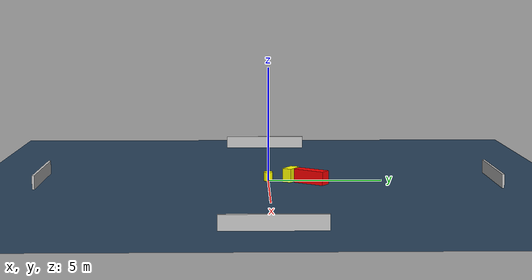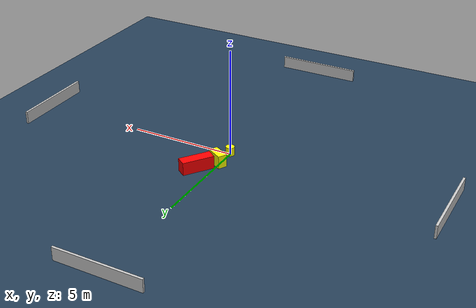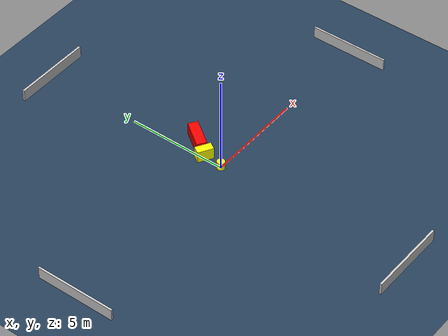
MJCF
<?xml version="1.0" ?>
<mujoco model="generated_environment">
  <option timestep="0.01" integrator="RK4" cone="elliptic"/>
  <default>
    <geom density="1"/>
  </default>
  <asset>
    <texture builtin="gradient" height="3072" name="skybox" rgb1="0.3 0.5 0.7" rgb2="0 0 0" type="skybox" width="512"/>
    <texture builtin="checker" height="300" name="groundplane" rgb1="0.2 0.3 0.4" rgb2="0.1 0.2 0.3" type="2d" width="300"/>
    <material name="groundplane" reflectance="0.2" texrepeat="5 5" texture="groundplane"/>
  </asset>
  <worldbody>
    <light dir="0 0 -1" directional="true" pos="0 0 1.5"/>
    <geom condim="3" friction="0.5 0.005 0.001" material="groundplane" name="floor" pos="0 0 0" size="0 0 0.05" type="plane"/>
    <body name="walls">
      <geom name="wall_1" condim="4" pos="-10.0 0.0 0.3" rgba="0.800000011920929 0.800000011920929 0.800000011920929 1.0" size="0.05 2.0 0.3" type="box"/>
      <geom name="wall_2" condim="4" pos="10.0 0.0 0.3" rgba="0.800000011920929 0.800000011920929 0.800000011920929 1.0" size="0.05 2.0 0.3" type="box"/>
      <geom name="wall_3" condim="4" pos="0.0 -10.0 0.3" rgba="0.800000011920929 0.800000011920929 0.800000011920929 1.0" size="2.0 0.05 0.3" type="box"/>
      <geom name="wall_4" condim="4" pos="0.0 10.0 0.3" rgba="0.800000011920929 0.800000011920929 0.800000011920929 1.0" size="2.0 0.05 0.3" type="box"/>
    </body>
    <body name="robot">
      <joint name="joint_x" type="slide" pos="0 0 0" axis="1 0 0"/>
      <joint name="joint_y" type="slide" pos="0 0 0" axis="0 1 0"/>
      <geom name="robot" type="cylinder" pos="0.0 0.0 0.2" size="0.2 0.2 0.0" mass="5.0" friction="1.0 0.005 0.0001" condim="4" rgba="1.0 1.0 0.0 1.0"/>
    </body>
    <body name="obstacle_1_movable">
      <geom name="obstacle_1_movable" condim="4" pos="0.0706584336863241 1.0070673655895324 0.3" euler="0 0 329.6013129937125" friction="0.0 0.005 0.001" rgba="1.0 1.0 0.0 1.0" size="0.4013675151178132 0.20680344670192352 0.3" type="box" mass="0.1"/>
      <joint type="free"/>
    </body>
    <body name="obstacle_2_static">
      <geom name="obstacle_2_static" condim="4" pos="0.6627014138325806 1.8636079728512331 0.3" euler="0 0 54.10367061197563" friction="0.0 0.005 0.001" rgba="1.0 0.0 0.0 1.0" size="0.7368847826550149 0.24933666453516407 0.3" type="box"/>
    </body>
  </worldbody>
  <actuator>
    <motor name="actuator_x" joint="joint_x" gear="1" ctrlrange="-1 1"/>
    <motor name="actuator_y" joint="joint_y" gear="1" ctrlrange="-1 1"/>
  </actuator>
</mujoco>
